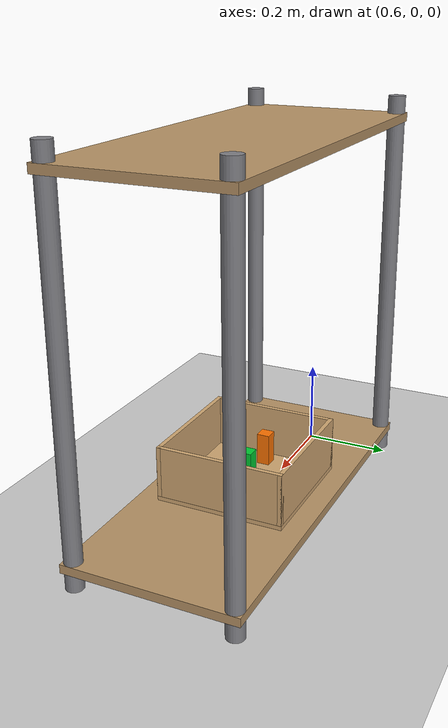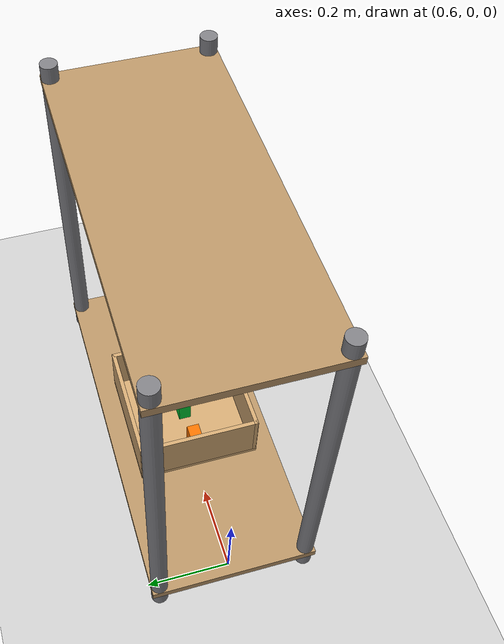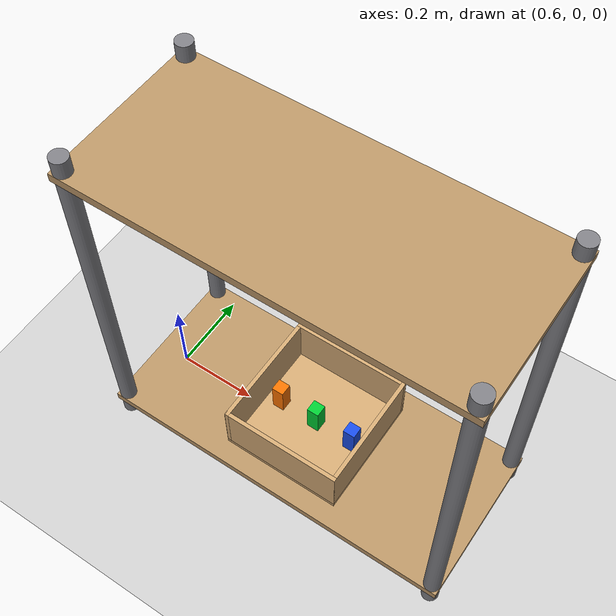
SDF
<sdf version='1.9'>
  <world name='empty_world'>
    <gravity>0 0 -9.8</gravity>
    <magnetic_field>6e-06 2.3e-05 -4.2e-05</magnetic_field>
    <atmosphere type='adiabatic'/>
    <physics type='ode'>
      <max_step_size>0.001</max_step_size>
      <real_time_factor>1</real_time_factor>
      <real_time_update_rate>1000</real_time_update_rate>
    </physics>
    <scene>
      <ambient>0.4 0.4 0.4 1</ambient>
      <background>0.7 0.7 0.7 1</background>
      <shadows>true</shadows>
    </scene>

    <model name='ground_plane'>
      <static>true</static>
      <link name='link'>
        <collision name='collision'>
          <geometry>
            <plane>
              <normal>0 0 1</normal>
              <size>1 1</size>
            </plane>
          </geometry>
          <surface>
            <friction>
              <ode/>
            </friction>
            <bounce/>
            <contact/>
          </surface>
        </collision>
        <visual name='visual'>
          <geometry>
            <plane>
              <normal>0 0 1</normal>
              <size>100 100</size>
            </plane>
          </geometry>
          <material>
            <ambient>0.8 0.8 0.8 1</ambient>
            <diffuse>0.8 0.8 0.8 1</diffuse>
            <specular>0.8 0.8 0.8 1</specular>
          </material>
        </visual>
        <pose>0 0 0 0 -0 0</pose>
        <inertial>
          <pose>0 0 0 0 -0 0</pose>
          <mass>1</mass>
          <inertia>
            <ixx>1</ixx>
            <ixy>0</ixy>
            <ixz>0</ixz>
            <iyy>1</iyy>
            <iyz>0</iyz>
            <izz>1</izz>
          </inertia>
        </inertial>
        <enable_wind>false</enable_wind>
      </link>
      <pose>0 0 0 0 -0 0</pose>
      <self_collide>false</self_collide>
    </model>
    <light name='sun' type='directional'>
      <pose>0 0 10 0 -0 0</pose>
      <cast_shadows>true</cast_shadows>
      <intensity>1</intensity>
      <direction>-0.5 0.1 -0.9</direction>
      <diffuse>0.8 0.8 0.8 1</diffuse>
      <specular>0.2 0.2 0.2 1</specular>
      <attenuation>
        <range>1000</range>
        <linear>0.01</linear>
        <constant>0.90000000000000002</constant>
        <quadratic>0.001</quadratic>
      </attenuation>
      <spot>
        <inner_angle>0</inner_angle>
        <outer_angle>0</outer_angle>
        <falloff>0</falloff>
      </spot>
    </light>

    <model name="storage_shelf_unit">
      <static>true</static>
      <pose>1.0 0.0 0.0 0 0 0</pose>

      <!-- 4 corner posts (cylindrical rods), full shelf height -->
      <link name="post_front_right">
        <pose>0.43 -0.18 0.45 0 0 0</pose>
        <collision name="post_front_right_collision">
          <geometry>
            <cylinder><radius>0.02</radius><length>0.9</length></cylinder>
          </geometry>
        </collision>
        <visual name="post_front_right_visual">
          <geometry>
            <cylinder><radius>0.02</radius><length>0.9</length></cylinder>
          </geometry>
          <material>
            <ambient>0.5 0.5 0.52 1</ambient>
            <diffuse>0.5 0.5 0.52 1</diffuse>
          </material>
        </visual>
      </link>

      <link name="post_front_left">
        <pose>0.43 0.18 0.45 0 0 0</pose>
        <collision name="post_front_left_collision">
          <geometry>
            <cylinder><radius>0.02</radius><length>0.9</length></cylinder>
          </geometry>
        </collision>
        <visual name="post_front_left_visual">
          <geometry>
            <cylinder><radius>0.02</radius><length>0.9</length></cylinder>
          </geometry>
          <material>
            <ambient>0.5 0.5 0.52 1</ambient>
            <diffuse>0.5 0.5 0.52 1</diffuse>
          </material>
        </visual>
      </link>

      <link name="post_back_right">
        <pose>-0.43 -0.18 0.45 0 0 0</pose>
        <collision name="post_back_right_collision">
          <geometry>
            <cylinder><radius>0.02</radius><length>0.9</length></cylinder>
          </geometry>
        </collision>
        <visual name="post_back_right_visual">
          <geometry>
            <cylinder><radius>0.02</radius><length>0.9</length></cylinder>
          </geometry>
          <material>
            <ambient>0.5 0.5 0.52 1</ambient>
            <diffuse>0.5 0.5 0.52 1</diffuse>
          </material>
        </visual>
      </link>

      <link name="post_back_left">
        <pose>-0.43 0.18 0.45 0 0 0</pose>
        <collision name="post_back_left_collision">
          <geometry>
            <cylinder><radius>0.02</radius><length>0.9</length></cylinder>
          </geometry>
        </collision>
        <visual name="post_back_left_visual">
          <geometry>
            <cylinder><radius>0.02</radius><length>0.9</length></cylinder>
          </geometry>
          <material>
            <ambient>0.5 0.5 0.52 1</ambient>
            <diffuse>0.5 0.5 0.52 1</diffuse>
          </material>
        </visual>
      </link>

      <!-- Row 1: bottom shelf slab (ground level) -->
      <link name="shelf_row_bottom">
        <pose>0 0 0.05 0 0 0</pose>
        <collision name="shelf_row_bottom_collision">
          <geometry>
            <box><size>0.9 0.4 0.02</size></box>
          </geometry>
        </collision>
        <visual name="shelf_row_bottom_visual">
          <geometry>
            <box><size>0.9 0.4 0.02</size></box>
          </geometry>
          <material>
            <ambient>0.72 0.58 0.40 1</ambient>
            <diffuse>0.72 0.58 0.40 1</diffuse>
          </material>
        </visual>
      </link>

      <!-- Row 2: top shelf slab (elevated / human operating height) -->
      <link name="shelf_row_top">
        <pose>0 0 0.85 0 0 0</pose>
        <collision name="shelf_row_top_collision">
          <geometry>
            <box><size>0.9 0.4 0.02</size></box>
          </geometry>
        </collision>
        <visual name="shelf_row_top_visual">
          <geometry>
            <box><size>0.9 0.4 0.02</size></box>
          </geometry>
          <material>
            <ambient>0.72 0.58 0.40 1</ambient>
            <diffuse>0.72 0.58 0.40 1</diffuse>
          </material>
        </visual>
      </link>

      <!-- Hollow crate (open-top, thin-walled box) sitting on the bottom row -->
      <link name="crate_floor">
        <pose>0 0 0.065 0 0 0</pose>
        <collision name="crate_floor_collision">
          <geometry>
            <box><size>0.3 0.3 0.01</size></box>
          </geometry>
        </collision>
        <visual name="crate_floor_visual">
          <geometry>
            <box><size>0.3 0.3 0.01</size></box>
          </geometry>
          <material>
            <ambient>0.82 0.66 0.45 1</ambient>
            <diffuse>0.82 0.66 0.45 1</diffuse>
          </material>
        </visual>
      </link>

      <link name="crate_wall_front">
        <pose>0 0.145 0.13 0 0 0</pose>
        <collision name="crate_wall_front_collision">
          <geometry>
            <box><size>0.3 0.01 0.12</size></box>
          </geometry>
        </collision>
        <visual name="crate_wall_front_visual">
          <geometry>
            <box><size>0.3 0.01 0.12</size></box>
          </geometry>
          <material>
            <ambient>0.82 0.66 0.45 1</ambient>
            <diffuse>0.82 0.66 0.45 1</diffuse>
          </material>
        </visual>
      </link>

      <link name="crate_wall_back">
        <pose>0 -0.145 0.13 0 0 0</pose>
        <collision name="crate_wall_back_collision">
          <geometry>
            <box><size>0.3 0.01 0.12</size></box>
          </geometry>
        </collision>
        <visual name="crate_wall_back_visual">
          <geometry>
            <box><size>0.3 0.01 0.12</size></box>
          </geometry>
          <material>
            <ambient>0.82 0.66 0.45 1</ambient>
            <diffuse>0.82 0.66 0.45 1</diffuse>
          </material>
        </visual>
      </link>

      <link name="crate_wall_left">
        <pose>-0.145 0 0.13 0 0 0</pose>
        <collision name="crate_wall_left_collision">
          <geometry>
            <box><size>0.01 0.3 0.12</size></box>
          </geometry>
        </collision>
        <visual name="crate_wall_left_visual">
          <geometry>
            <box><size>0.01 0.3 0.12</size></box>
          </geometry>
          <material>
            <ambient>0.82 0.66 0.45 1</ambient>
            <diffuse>0.82 0.66 0.45 1</diffuse>
          </material>
        </visual>
      </link>

      <link name="crate_wall_right">
        <pose>0.145 0 0.13 0 0 0</pose>
        <collision name="crate_wall_right_collision">
          <geometry>
            <box><size>0.01 0.3 0.12</size></box>
          </geometry>
        </collision>
        <visual name="crate_wall_right_visual">
          <geometry>
            <box><size>0.01 0.3 0.12</size></box>
          </geometry>
          <material>
            <ambient>0.82 0.66 0.45 1</ambient>
            <diffuse>0.82 0.66 0.45 1</diffuse>
          </material>
        </visual>
      </link>
    </model>

    <!-- 3 dynamic blocks resting inside the crate (only non-static parts) -->
    <model name="shelf_block_orange">
      <static>false</static>
      <link name="shelf_block_orange_link">
        <pose>0.9 0.0 0.095 0 0 0</pose>
        <inertial>
          <mass>0.05</mass>
          <inertia>
            <ixx>2.08e-05</ixx><iyy>2.08e-05</iyy><izz>2.08e-05</izz>
            <ixy>0</ixy><ixz>0</ixz><iyz>0</iyz>
          </inertia>
        </inertial>
        <collision name="shelf_block_orange_collision">
          <geometry>
            <box><size>0.03 0.03 0.1</size></box>
          </geometry>
        </collision>
        <visual name="shelf_block_orange_visual">
          <geometry>
            <box><size>0.03 0.03 0.1</size></box>
          </geometry>
          <material>
            <ambient>1 0.45 0 1</ambient>
            <diffuse>1 0.45 0 1</diffuse>
          </material>
        </visual>
      </link>
    </model>

    <model name="shelf_block_green">
      <static>false</static>
      <link name="shelf_block_green_link">
        <pose>1.0 0.0 0.095 0 0 0</pose>
        <inertial>
          <mass>0.05</mass>
          <inertia>
            <ixx>2.08e-05</ixx><iyy>2.08e-05</iyy><izz>2.08e-05</izz>
            <ixy>0</ixy><ixz>0</ixz><iyz>0</iyz>
          </inertia>
        </inertial>
        <collision name="shelf_block_green_collision">
          <geometry>
            <box><size>0.03 0.03 0.1</size></box>
          </geometry>
        </collision>
        <visual name="shelf_block_green_visual">
          <geometry>
            <box><size>0.03 0.03 0.1</size></box>
          </geometry>
          <material>
            <ambient>0 0.8 0.2 1</ambient>
            <diffuse>0 0.8 0.2 1</diffuse>
          </material>
        </visual>
      </link>
    </model>

    <model name="shelf_block_blue">
      <static>false</static>
      <link name="shelf_block_blue_link">
        <pose>1.1 0.0 0.095 0 0 0</pose>
        <inertial>
          <mass>0.05</mass>
          <inertia>
            <ixx>2.08e-05</ixx><iyy>2.08e-05</iyy><izz>2.08e-05</izz>
            <ixy>0</ixy><ixz>0</ixz><iyz>0</iyz>
          </inertia>
        </inertial>
        <collision name="shelf_block_blue_collision">
          <geometry>
            <box><size>0.03 0.03 0.1</size></box>
          </geometry>
        </collision>
        <visual name="shelf_block_blue_visual">
          <geometry>
            <box><size>0.03 0.03 0.1</size></box>
          </geometry>
          <material>
            <ambient>0.1 0.3 0.9 1</ambient>
            <diffuse>0.1 0.3 0.9 1</diffuse>
          </material>
        </visual>
      </link>
    </model>

  </world>
</sdf>
